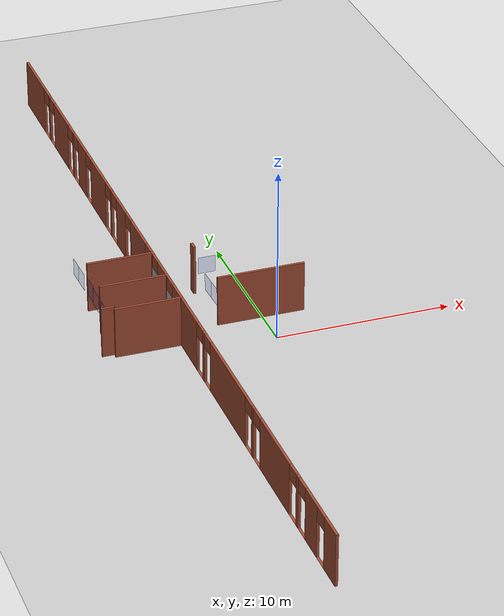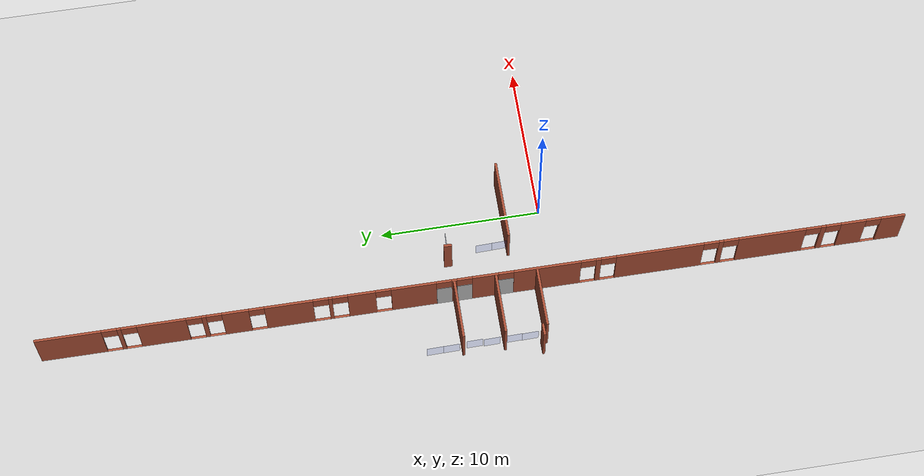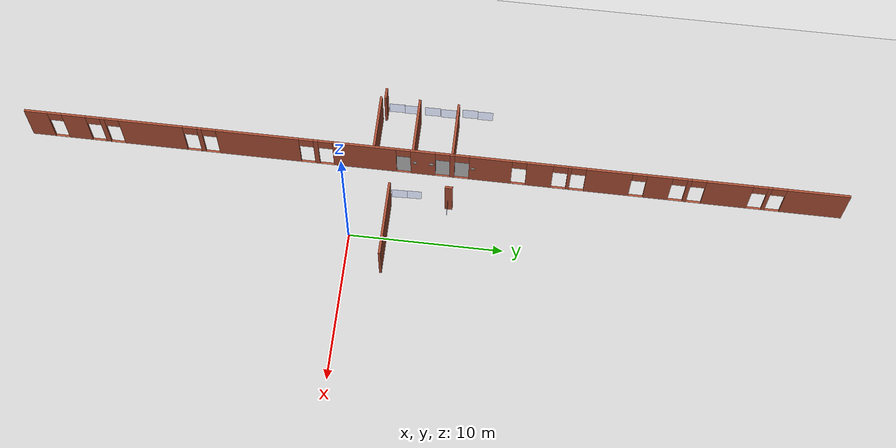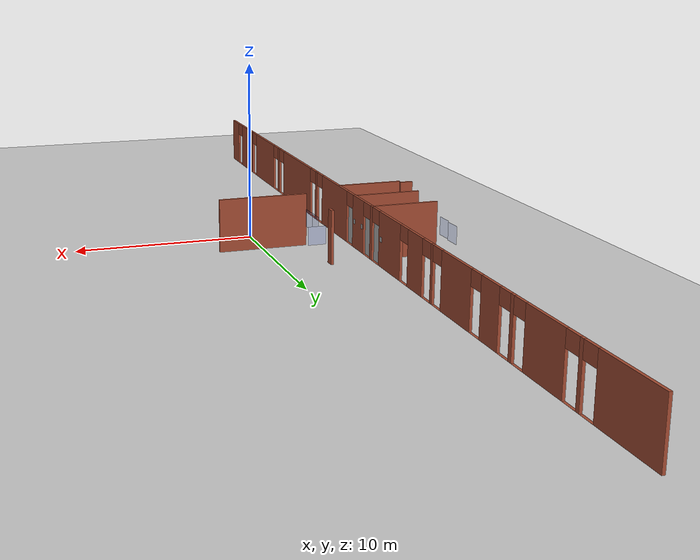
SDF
<sdf version="1.6">
 <world name="default">
  <model name="ground_plane">
   <static>1</static>
   <link name="link">
    <collision name="collision">
     <geometry><plane><normal>0 0 1</normal><size>100 100</size></plane></geometry>
     <surface><friction><ode><mu>100</mu><mu2>50</mu2></ode></friction></surface>
    </collision>
    <visual name="visual">
     <cast_shadows>0</cast_shadows>
     <geometry><plane><normal>0 0 1</normal><size>100 100</size></plane></geometry>
     <material>
      <script><uri>file://media/materials/scripts/gazebo.material</uri><name>Gazebo/Grey</name></script>
     </material>
    </visual>
   </link>
  </model>
  <model name="UNFRGS_INF_-_Predio_73">
   <pose>-0.02513 1.0401 -0.009 0 -0 0</pose>
   <link name="Wall_136">
    <collision name="Wall_136_Collision">
     <geometry><box><size>3.75 0.15 2.96</size></box></geometry>
     <pose>0 0 1.48 0 -0 0</pose>
    </collision>
    <visual name="Wall_136_Visual">
     <pose>0 0 1.48 0 -0 0</pose>
     <geometry><box><size>3.75 0.15 2.96</size></box></geometry>
     <material>
      <script><uri>file://media/materials/scripts/gazebo.material</uri><name>Gazebo/Bricks</name></script>
      <ambient>0.929412 1 0.760784 1</ambient>
     </material>
     <meta><layer>0</layer></meta>
    </visual>
    <pose>-6.88813 5.09778 0 0 -0 0</pose>
   </link>
   <link name="Wall_159">
    <collision name="Wall_159_Collision">
     <geometry><box><size>5 0.15 2.96</size></box></geometry>
     <pose>0 0 1.48 0 -0 0</pose>
    </collision>
    <visual name="Wall_159_Visual">
     <pose>0 0 1.48 0 -0 0</pose>
     <geometry><box><size>5 0.15 2.96</size></box></geometry>
     <material>
      <script><uri>file://media/materials/scripts/gazebo.material</uri><name>Gazebo/Bricks</name></script>
      <ambient>0.929412 1 0.760784 1</ambient>
     </material>
     <meta><layer>0</layer></meta>
    </visual>
    <pose>-0.048133 1.33278 0 0 -0 0</pose>
   </link>
   <link name="Wall_173">
    <collision name="Wall_173_Collision">
     <geometry><box><size>0.5 0.15 2.96</size></box></geometry>
     <pose>0 0 1.48 0 -0 0</pose>
    </collision>
    <visual name="Wall_173_Visual">
     <pose>0 0 1.48 0 -0 0</pose>
     <geometry><box><size>0.5 0.15 2.96</size></box></geometry>
     <material>
      <script><uri>file://media/materials/scripts/gazebo.material</uri><name>Gazebo/Bricks</name></script>
      <ambient>0.929412 1 0.760784 1</ambient>
     </material>
     <meta><layer>0</layer></meta>
    </visual>
    <pose>-2.65213 5.13278 0 0 0 -1.5708</pose>
   </link>
   <link name="Wall_179">
    <collision name="Wall_179_Collision">
     <geometry><box><size>3.75 0.15 2.96</size></box></geometry>
     <pose>0 0 1.48 0 -0 0</pose>
    </collision>
    <visual name="Wall_179_Visual">
     <pose>0 0 1.48 0 -0 0</pose>
     <geometry><box><size>3.75 0.15 2.96</size></box></geometry>
     <material>
      <script><uri>file://media/materials/scripts/gazebo.material</uri><name>Gazebo/Bricks</name></script>
      <ambient>0.929412 1 0.760784 1</ambient>
     </material>
     <meta><layer>0</layer></meta>
    </visual>
    <pose>-6.94213 2.54178 0 0 -0 0</pose>
   </link>
   <link name="Wall_181">
    <collision name="Wall_181_Collision">
     <geometry><box><size>3.75 0.15 2.96</size></box></geometry>
     <pose>0 0 1.48 0 -0 0</pose>
    </collision>
    <visual name="Wall_181_Visual">
     <pose>0 0 1.48 0 -0 0</pose>
     <geometry><box><size>3.75 0.15 2.96</size></box></geometry>
     <material>
      <script><uri>file://media/materials/scripts/gazebo.material</uri><name>Gazebo/Bricks</name></script>
      <ambient>0.929412 1 0.760784 1</ambient>
     </material>
     <meta><layer>0</layer></meta>
    </visual>
    <pose>-6.88713 -0.003219 0 0 -0 0</pose>
   </link>
   <link name="Wall_64">
    <pose>-5.01013 3.78878 0 0 -0 1.5708</pose>
    <visual name="Wall_64_Visual_0">
     <pose>-25.9895 0 1.48 0 -0 0</pose>
     <geometry><box><size>1.52099 0.15 2.96</size></box></geometry>
     <material>
      <script><uri>file://media/materials/scripts/gazebo.material</uri><name>Gazebo/Bricks</name></script>
      <ambient>0.929412 1 0.760784 1</ambient>
     </material>
     <meta><layer>0</layer></meta>
    </visual>
    <collision name="Wall_64_Collision_0">
     <geometry><box><size>1.52099 0.15 2.96</size></box></geometry>
     <pose>-25.9895 0 1.48 0 -0 0</pose>
    </collision>
    <visual name="Wall_64_Visual_1">
     <pose>-23.5034 0 1.48 0 -0 0</pose>
     <geometry><box><size>1.57122 0.15 2.96</size></box></geometry>
     <material>
      <script><uri>file://media/materials/scripts/gazebo.material</uri><name>Gazebo/Bricks</name></script>
      <ambient>0.929412 1 0.760784 1</ambient>
     </material>
     <meta><layer>0</layer></meta>
    </visual>
    <collision name="Wall_64_Collision_1">
     <geometry><box><size>1.57122 0.15 2.96</size></box></geometry>
     <pose>-23.5034 0 1.48 0 -0 0</pose>
    </collision>
    <visual name="Wall_64_Visual_2">
     <pose>-21.62 0 1.48 0 -0 0</pose>
     <geometry><box><size>0.315611 0.15 2.96</size></box></geometry>
     <material>
      <script><uri>file://media/materials/scripts/gazebo.material</uri><name>Gazebo/Bricks</name></script>
      <ambient>0.929412 1 0.760784 1</ambient>
     </material>
     <meta><layer>0</layer></meta>
    </visual>
    <collision name="Wall_64_Collision_2">
     <geometry><box><size>0.315611 0.15 2.96</size></box></geometry>
     <pose>-21.62 0 1.48 0 -0 0</pose>
    </collision>
    <visual name="Wall_64_Visual_3">
     <pose>-18.4152 0 1.48 0 -0 0</pose>
     <geometry><box><size>4.21398 0.15 2.96</size></box></geometry>
     <material>
      <script><uri>file://media/materials/scripts/gazebo.material</uri><name>Gazebo/Bricks</name></script>
      <ambient>0.929412 1 0.760784 1</ambient>
     </material>
     <meta><layer>0</layer></meta>
    </visual>
    <collision name="Wall_64_Collision_3">
     <geometry><box><size>4.21398 0.15 2.96</size></box></geometry>
     <pose>-18.4152 0 1.48 0 -0 0</pose>
    </collision>
    <visual name="Wall_64_Visual_4">
     <pose>-15.2224 0 1.48 0 -0 0</pose>
     <geometry><box><size>0.291694 0.15 2.96</size></box></geometry>
     <material>
      <script><uri>file://media/materials/scripts/gazebo.material</uri><name>Gazebo/Bricks</name></script>
      <ambient>0.929412 1 0.760784 1</ambient>
     </material>
     <meta><layer>0</layer></meta>
    </visual>
    <collision name="Wall_64_Collision_4">
     <geometry><box><size>0.291694 0.15 2.96</size></box></geometry>
     <pose>-15.2224 0 1.48 0 -0 0</pose>
    </collision>
    <visual name="Wall_64_Visual_5">
     <pose>-11.4137 0 1.48 0 -0 0</pose>
     <geometry><box><size>5.44567 0.15 2.96</size></box></geometry>
     <material>
      <script><uri>file://media/materials/scripts/gazebo.material</uri><name>Gazebo/Bricks</name></script>
      <ambient>0.929412 1 0.760784 1</ambient>
     </material>
     <meta><layer>0</layer></meta>
    </visual>
    <collision name="Wall_64_Collision_5">
     <geometry><box><size>5.44567 0.15 2.96</size></box></geometry>
     <pose>-11.4137 0 1.48 0 -0 0</pose>
    </collision>
    <visual name="Wall_64_Visual_6">
     <pose>-7.59901 0 1.48 0 -0 0</pose>
     <geometry><box><size>0.303652 0.15 2.96</size></box></geometry>
     <material>
      <script><uri>file://media/materials/scripts/gazebo.material</uri><name>Gazebo/Bricks</name></script>
      <ambient>0.929412 1 0.760784 1</ambient>
     </material>
     <meta><layer>0</layer></meta>
    </visual>
    <collision name="Wall_64_Collision_6">
     <geometry><box><size>0.303652 0.15 2.96</size></box></geometry>
     <pose>-7.59901 0 1.48 0 -0 0</pose>
    </collision>
    <visual name="Wall_64_Visual_7">
     <pose>-4.43008 0 1.48 0 -0 0</pose>
     <geometry><box><size>4.15419 0.15 2.96</size></box></geometry>
     <material>
      <script><uri>file://media/materials/scripts/gazebo.material</uri><name>Gazebo/Bricks</name></script>
      <ambient>0.929412 1 0.760784 1</ambient>
     </material>
     <meta><layer>0</layer></meta>
    </visual>
    <collision name="Wall_64_Collision_7">
     <geometry><box><size>4.15419 0.15 2.96</size></box></geometry>
     <pose>-4.43008 0 1.48 0 -0 0</pose>
    </collision>
    <visual name="Wall_64_Visual_8">
     <pose>-0.603462 0 1.48 0 -0 0</pose>
     <geometry><box><size>1.61905 0.15 2.96</size></box></geometry>
     <material>
      <script><uri>file://media/materials/scripts/gazebo.material</uri><name>Gazebo/Bricks</name></script>
      <ambient>0.929412 1 0.760784 1</ambient>
     </material>
     <meta><layer>0</layer></meta>
    </visual>
    <collision name="Wall_64_Collision_8">
     <geometry><box><size>1.61905 0.15 2.96</size></box></geometry>
     <pose>-0.603462 0 1.48 0 -0 0</pose>
    </collision>
    <visual name="Wall_64_Visual_9">
     <pose>1.30387 0 1.48 0 -0 0</pose>
     <geometry><box><size>0.31561 0.15 2.96</size></box></geometry>
     <material>
      <script><uri>file://media/materials/scripts/gazebo.material</uri><name>Gazebo/Bricks</name></script>
      <ambient>0.929412 1 0.760784 1</ambient>
     </material>
     <meta><layer>0</layer></meta>
    </visual>
    <collision name="Wall_64_Collision_9">
     <geometry><box><size>0.31561 0.15 2.96</size></box></geometry>
     <pose>1.30387 0 1.48 0 -0 0</pose>
    </collision>
    <visual name="Wall_64_Visual_10">
     <pose>3.79117 0 1.48 0 -0 0</pose>
     <geometry><box><size>2.779 0.15 2.96</size></box></geometry>
     <material>
      <script><uri>file://media/materials/scripts/gazebo.material</uri><name>Gazebo/Bricks</name></script>
      <ambient>0.929412 1 0.760784 1</ambient>
     </material>
     <meta><layer>0</layer></meta>
    </visual>
    <collision name="Wall_64_Collision_10">
     <geometry><box><size>2.779 0.15 2.96</size></box></geometry>
     <pose>3.79117 0 1.48 0 -0 0</pose>
    </collision>
    <visual name="Wall_64_Visual_11">
     <pose>6.97803 0 1.48 0 -0 0</pose>
     <geometry><box><size>1.71472 0.15 2.96</size></box></geometry>
     <material>
      <script><uri>file://media/materials/scripts/gazebo.material</uri><name>Gazebo/Bricks</name></script>
      <ambient>0.929412 1 0.760784 1</ambient>
     </material>
     <meta><layer>0</layer></meta>
    </visual>
    <collision name="Wall_64_Collision_11">
     <geometry><box><size>1.71472 0.15 2.96</size></box></geometry>
     <pose>6.97803 0 1.48 0 -0 0</pose>
    </collision>
    <visual name="Wall_64_Visual_12">
     <pose>8.89134 0 1.48 0 -0 0</pose>
     <geometry><box><size>0.231904 0.15 2.96</size></box></geometry>
     <material>
      <script><uri>file://media/materials/scripts/gazebo.material</uri><name>Gazebo/Bricks</name></script>
      <ambient>0.929412 1 0.760784 1</ambient>
     </material>
     <meta><layer>0</layer></meta>
    </visual>
    <collision name="Wall_64_Collision_12">
     <geometry><box><size>0.231904 0.15 2.96</size></box></geometry>
     <pose>8.89134 0 1.48 0 -0 0</pose>
    </collision>
    <visual name="Wall_64_Visual_13">
     <pose>11.4265 0 1.48 0 -0 0</pose>
     <geometry><box><size>2.95837 0.15 2.96</size></box></geometry>
     <material>
      <script><uri>file://media/materials/scripts/gazebo.material</uri><name>Gazebo/Bricks</name></script>
      <ambient>0.929412 1 0.760784 1</ambient>
     </material>
     <meta><layer>0</layer></meta>
    </visual>
    <collision name="Wall_64_Collision_13">
     <geometry><box><size>2.95837 0.15 2.96</size></box></geometry>
     <pose>11.4265 0 1.48 0 -0 0</pose>
    </collision>
    <visual name="Wall_64_Visual_14">
     <pose>14.6612 0 1.48 0 -0 0</pose>
     <geometry><box><size>1.63101 0.15 2.96</size></box></geometry>
     <material>
      <script><uri>file://media/materials/scripts/gazebo.material</uri><name>Gazebo/Bricks</name></script>
      <ambient>0.929412 1 0.760784 1</ambient>
     </material>
     <meta><layer>0</layer></meta>
    </visual>
    <collision name="Wall_64_Collision_14">
     <geometry><box><size>1.63101 0.15 2.96</size></box></geometry>
     <pose>14.6612 0 1.48 0 -0 0</pose>
    </collision>
    <visual name="Wall_64_Visual_15">
     <pose>16.5506 0 1.48 0 -0 0</pose>
     <geometry><box><size>0.267777 0.15 2.96</size></box></geometry>
     <material>
      <script><uri>file://media/materials/scripts/gazebo.material</uri><name>Gazebo/Bricks</name></script>
      <ambient>0.929412 1 0.760784 1</ambient>
     </material>
     <meta><layer>0</layer></meta>
    </visual>
    <collision name="Wall_64_Collision_15">
     <geometry><box><size>0.267777 0.15 2.96</size></box></geometry>
     <pose>16.5506 0 1.48 0 -0 0</pose>
    </collision>
    <visual name="Wall_64_Visual_16">
     <pose>19.1156 0 1.48 0 -0 0</pose>
     <geometry><box><size>2.98229 0.15 2.96</size></box></geometry>
     <material>
      <script><uri>file://media/materials/scripts/gazebo.material</uri><name>Gazebo/Bricks</name></script>
      <ambient>0.929412 1 0.760784 1</ambient>
     </material>
     <meta><layer>0</layer></meta>
    </visual>
    <collision name="Wall_64_Collision_16">
     <geometry><box><size>2.98229 0.15 2.96</size></box></geometry>
     <pose>19.1156 0 1.48 0 -0 0</pose>
    </collision>
    <visual name="Wall_64_Visual_17">
     <pose>21.6687 0 1.48 0 -0 0</pose>
     <geometry><box><size>0.243863 0.15 2.96</size></box></geometry>
     <material>
      <script><uri>file://media/materials/scripts/gazebo.material</uri><name>Gazebo/Bricks</name></script>
      <ambient>0.929412 1 0.760784 1</ambient>
     </material>
     <meta><layer>0</layer></meta>
    </visual>
    <collision name="Wall_64_Collision_17">
     <geometry><box><size>0.243863 0.15 2.96</size></box></geometry>
     <pose>21.6687 0 1.48 0 -0 0</pose>
    </collision>
    <visual name="Wall_64_Visual_18">
     <pose>24.7403 0 1.48 0 -0 0</pose>
     <geometry><box><size>4.01939 0.15 2.96</size></box></geometry>
     <material>
      <script><uri>file://media/materials/scripts/gazebo.material</uri><name>Gazebo/Bricks</name></script>
      <ambient>0.929412 1 0.760784 1</ambient>
     </material>
     <meta><layer>0</layer></meta>
    </visual>
    <collision name="Wall_64_Collision_18">
     <geometry><box><size>4.01939 0.15 2.96</size></box></geometry>
     <pose>24.7403 0 1.48 0 -0 0</pose>
    </collision>
    <visual name="Wall_64_Visual_19">
     <pose>-24.759 0 0 0 -0 0</pose>
     <geometry><box><size>0.94 0.15 0.001</size></box></geometry>
     <material>
      <script><uri>file://media/materials/scripts/gazebo.material</uri><name>Gazebo/Bricks</name></script>
      <ambient>0.929412 1 0.760784 1</ambient>
     </material>
     <meta><layer>0</layer></meta>
    </visual>
    <collision name="Wall_64_Collision_19">
     <geometry><box><size>0.94 0.15 0.001</size></box></geometry>
     <pose>-24.759 0 0 0 -0 0</pose>
    </collision>
    <visual name="Wall_64_Visual_20">
     <pose>-22.2478 0 0 0 -0 0</pose>
     <geometry><box><size>0.94 0.15 0.001</size></box></geometry>
     <material>
      <script><uri>file://media/materials/scripts/gazebo.material</uri><name>Gazebo/Bricks</name></script>
      <ambient>0.929412 1 0.760784 1</ambient>
     </material>
     <meta><layer>0</layer></meta>
    </visual>
    <collision name="Wall_64_Collision_20">
     <geometry><box><size>0.94 0.15 0.001</size></box></geometry>
     <pose>-22.2478 0 0 0 -0 0</pose>
    </collision>
    <visual name="Wall_64_Visual_21">
     <pose>-20.9922 0 0 0 -0 0</pose>
     <geometry><box><size>0.94 0.15 0.001</size></box></geometry>
     <material>
      <script><uri>file://media/materials/scripts/gazebo.material</uri><name>Gazebo/Bricks</name></script>
      <ambient>0.929412 1 0.760784 1</ambient>
     </material>
     <meta><layer>0</layer></meta>
    </visual>
    <collision name="Wall_64_Collision_21">
     <geometry><box><size>0.94 0.15 0.001</size></box></geometry>
     <pose>-20.9922 0 0 0 -0 0</pose>
    </collision>
    <visual name="Wall_64_Visual_22">
     <pose>-15.8382 0 0 0 -0 0</pose>
     <geometry><box><size>0.94 0.15 0.001</size></box></geometry>
     <material>
      <script><uri>file://media/materials/scripts/gazebo.material</uri><name>Gazebo/Bricks</name></script>
      <ambient>0.929412 1 0.760784 1</ambient>
     </material>
     <meta><layer>0</layer></meta>
    </visual>
    <collision name="Wall_64_Collision_22">
     <geometry><box><size>0.94 0.15 0.001</size></box></geometry>
     <pose>-15.8382 0 0 0 -0 0</pose>
    </collision>
    <visual name="Wall_64_Visual_23">
     <pose>-14.6065 0 0 0 -0 0</pose>
     <geometry><box><size>0.94 0.15 0.001</size></box></geometry>
     <material>
      <script><uri>file://media/materials/scripts/gazebo.material</uri><name>Gazebo/Bricks</name></script>
      <ambient>0.929412 1 0.760784 1</ambient>
     </material>
     <meta><layer>0</layer></meta>
    </visual>
    <collision name="Wall_64_Collision_23">
     <geometry><box><size>0.94 0.15 0.001</size></box></geometry>
     <pose>-14.6065 0 0 0 -0 0</pose>
    </collision>
    <visual name="Wall_64_Visual_24">
     <pose>-8.22083 0 0 0 -0 0</pose>
     <geometry><box><size>0.94 0.15 0.001</size></box></geometry>
     <material>
      <script><uri>file://media/materials/scripts/gazebo.material</uri><name>Gazebo/Bricks</name></script>
      <ambient>0.929412 1 0.760784 1</ambient>
     </material>
     <meta><layer>0</layer></meta>
    </visual>
    <collision name="Wall_64_Collision_24">
     <geometry><box><size>0.94 0.15 0.001</size></box></geometry>
     <pose>-8.22083 0 0 0 -0 0</pose>
    </collision>
    <visual name="Wall_64_Visual_25">
     <pose>-6.97718 0 0 0 -0 0</pose>
     <geometry><box><size>0.94 0.15 0.001</size></box></geometry>
     <material>
      <script><uri>file://media/materials/scripts/gazebo.material</uri><name>Gazebo/Bricks</name></script>
      <ambient>0.929412 1 0.760784 1</ambient>
     </material>
     <meta><layer>0</layer></meta>
    </visual>
    <collision name="Wall_64_Collision_25">
     <geometry><box><size>0.94 0.15 0.001</size></box></geometry>
     <pose>-6.97718 0 0 0 -0 0</pose>
    </collision>
    <visual name="Wall_64_Visual_26">
     <pose>-1.88299 0 0 0 -0 0</pose>
     <geometry><box><size>0.94 0.15 0.001</size></box></geometry>
     <material>
      <script><uri>file://media/materials/scripts/gazebo.material</uri><name>Gazebo/Bricks</name></script>
      <ambient>0.929412 1 0.760784 1</ambient>
     </material>
     <meta><layer>0</layer></meta>
    </visual>
    <collision name="Wall_64_Collision_26">
     <geometry><box><size>0.94 0.15 0.001</size></box></geometry>
     <pose>-1.88299 0 0 0 -0 0</pose>
    </collision>
    <visual name="Wall_64_Visual_27">
     <pose>0.676065 0 0 0 -0 0</pose>
     <geometry><box><size>0.94 0.15 0.001</size></box></geometry>
     <material>
      <script><uri>file://media/materials/scripts/gazebo.material</uri><name>Gazebo/Bricks</name></script>
      <ambient>0.929412 1 0.760784 1</ambient>
     </material>
     <meta><layer>0</layer></meta>
    </visual>
    <collision name="Wall_64_Collision_27">
     <geometry><box><size>0.94 0.15 0.001</size></box></geometry>
     <pose>0.676065 0 0 0 -0 0</pose>
    </collision>
    <visual name="Wall_64_Visual_28">
     <pose>1.93168 0 0 0 -0 0</pose>
     <geometry><box><size>0.94 0.15 0.001</size></box></geometry>
     <material>
      <script><uri>file://media/materials/scripts/gazebo.material</uri><name>Gazebo/Bricks</name></script>
      <ambient>0.929412 1 0.760784 1</ambient>
     </material>
     <meta><layer>0</layer></meta>
    </visual>
    <collision name="Wall_64_Collision_28">
     <geometry><box><size>0.94 0.15 0.001</size></box></geometry>
     <pose>1.93168 0 0 0 -0 0</pose>
    </collision>
    <visual name="Wall_64_Visual_29">
     <pose>5.65067 0 0 0 -0 0</pose>
     <geometry><box><size>0.94 0.15 0.001</size></box></geometry>
     <material>
      <script><uri>file://media/materials/scripts/gazebo.material</uri><name>Gazebo/Bricks</name></script>
      <ambient>0.929412 1 0.760784 1</ambient>
     </material>
     <meta><layer>0</layer></meta>
    </visual>
    <collision name="Wall_64_Collision_29">
     <geometry><box><size>0.94 0.15 0.001</size></box></geometry>
     <pose>5.65067 0 0 0 -0 0</pose>
    </collision>
    <visual name="Wall_64_Visual_30">
     <pose>8.30539 0 0 0 -0 0</pose>
     <geometry><box><size>0.94 0.15 0.001</size></box></geometry>
     <material>
      <script><uri>file://media/materials/scripts/gazebo.material</uri><name>Gazebo/Bricks</name></script>
      <ambient>0.929412 1 0.760784 1</ambient>
     </material>
     <meta><layer>0</layer></meta>
    </visual>
    <collision name="Wall_64_Collision_30">
     <geometry><box><size>0.94 0.15 0.001</size></box></geometry>
     <pose>8.30539 0 0 0 -0 0</pose>
    </collision>
    <visual name="Wall_64_Visual_31">
     <pose>9.4773 0 0 0 -0 0</pose>
     <geometry><box><size>0.94 0.15 0.001</size></box></geometry>
     <material>
      <script><uri>file://media/materials/scripts/gazebo.material</uri><name>Gazebo/Bricks</name></script>
      <ambient>0.929412 1 0.760784 1</ambient>
     </material>
     <meta><layer>0</layer></meta>
    </visual>
    <collision name="Wall_64_Collision_31">
     <geometry><box><size>0.94 0.15 0.001</size></box></geometry>
     <pose>9.4773 0 0 0 -0 0</pose>
    </collision>
    <visual name="Wall_64_Visual_32">
     <pose>13.3757 0 0 0 -0 0</pose>
     <geometry><box><size>0.94 0.15 0.001</size></box></geometry>
     <material>
      <script><uri>file://media/materials/scripts/gazebo.material</uri><name>Gazebo/Bricks</name></script>
      <ambient>0.929412 1 0.760784 1</ambient>
     </material>
     <meta><layer>0</layer></meta>
    </visual>
    <collision name="Wall_64_Collision_32">
     <geometry><box><size>0.94 0.15 0.001</size></box></geometry>
     <pose>13.3757 0 0 0 -0 0</pose>
    </collision>
    <visual name="Wall_64_Visual_33">
     <pose>15.9467 0 0 0 -0 0</pose>
     <geometry><box><size>0.94 0.15 0.001</size></box></geometry>
     <material>
      <script><uri>file://media/materials/scripts/gazebo.material</uri><name>Gazebo/Bricks</name></script>
      <ambient>0.929412 1 0.760784 1</ambient>
     </material>
     <meta><layer>0</layer></meta>
    </visual>
    <collision name="Wall_64_Collision_33">
     <geometry><box><size>0.94 0.15 0.001</size></box></geometry>
     <pose>15.9467 0 0 0 -0 0</pose>
    </collision>
    <visual name="Wall_64_Visual_34">
     <pose>17.1545 0 0 0 -0 0</pose>
     <geometry><box><size>0.94 0.15 0.001</size></box></geometry>
     <material>
      <script><uri>file://media/materials/scripts/gazebo.material</uri><name>Gazebo/Bricks</name></script>
      <ambient>0.929412 1 0.760784 1</ambient>
     </material>
     <meta><layer>0</layer></meta>
    </visual>
    <collision name="Wall_64_Collision_34">
     <geometry><box><size>0.94 0.15 0.001</size></box></geometry>
     <pose>17.1545 0 0 0 -0 0</pose>
    </collision>
    <visual name="Wall_64_Visual_35">
     <pose>21.0767 0 0 0 -0 0</pose>
     <geometry><box><size>0.94 0.15 0.001</size></box></geometry>
     <material>
      <script><uri>file://media/materials/scripts/gazebo.material</uri><name>Gazebo/Bricks</name></script>
      <ambient>0.929412 1 0.760784 1</ambient>
     </material>
     <meta><layer>0</layer></meta>
    </visual>
    <collision name="Wall_64_Collision_35">
     <geometry><box><size>0.94 0.15 0.001</size></box></geometry>
     <pose>21.0767 0 0 0 -0 0</pose>
    </collision>
    <visual name="Wall_64_Visual_36">
     <pose>22.2606 0 0 0 -0 0</pose>
     <geometry><box><size>0.94 0.15 0.001</size></box></geometry>
     <material>
      <script><uri>file://media/materials/scripts/gazebo.material</uri><name>Gazebo/Bricks</name></script>
      <ambient>0.929412 1 0.760784 1</ambient>
     </material>
     <meta><layer>0</layer></meta>
    </visual>
    <collision name="Wall_64_Collision_36">
     <geometry><box><size>0.94 0.15 0.001</size></box></geometry>
     <pose>22.2606 0 0 0 -0 0</pose>
    </collision>
    <visual name="Wall_64_Visual_37">
     <pose>-24.759 0 2.555 0 -0 0</pose>
     <geometry><box><size>0.94 0.15 0.81</size></box></geometry>
     <material>
      <script><uri>file://media/materials/scripts/gazebo.material</uri><name>Gazebo/Bricks</name></script>
      <ambient>0.929412 1 0.760784 1</ambient>
     </material>
     <meta><layer>0</layer></meta>
    </visual>
    <collision name="Wall_64_Collision_37">
     <geometry><box><size>0.94 0.15 0.81</size></box></geometry>
     <pose>-24.759 0 2.555 0 -0 0</pose>
    </collision>
    <visual name="Wall_64_Visual_38">
     <pose>-22.2478 0 2.555 0 -0 0</pose>
     <geometry><box><size>0.94 0.15 0.81</size></box></geometry>
     <material>
      <script><uri>file://media/materials/scripts/gazebo.material</uri><name>Gazebo/Bricks</name></script>
      <ambient>0.929412 1 0.760784 1</ambient>
     </material>
     <meta><layer>0</layer></meta>
    </visual>
    <collision name="Wall_64_Collision_38">
     <geometry><box><size>0.94 0.15 0.81</size></box></geometry>
     <pose>-22.2478 0 2.555 0 -0 0</pose>
    </collision>
    <visual name="Wall_64_Visual_39">
     <pose>-20.9922 0 2.555 0 -0 0</pose>
     <geometry><box><size>0.94 0.15 0.81</size></box></geometry>
     <material>
      <script><uri>file://media/materials/scripts/gazebo.material</uri><name>Gazebo/Bricks</name></script>
      <ambient>0.929412 1 0.760784 1</ambient>
     </material>
     <meta><layer>0</layer></meta>
    </visual>
    <collision name="Wall_64_Collision_39">
     <geometry><box><size>0.94 0.15 0.81</size></box></geometry>
     <pose>-20.9922 0 2.555 0 -0 0</pose>
    </collision>
    <visual name="Wall_64_Visual_40">
     <pose>-15.8382 0 2.555 0 -0 0</pose>
     <geometry><box><size>0.94 0.15 0.81</size></box></geometry>
     <material>
      <script><uri>file://media/materials/scripts/gazebo.material</uri><name>Gazebo/Bricks</name></script>
      <ambient>0.929412 1 0.760784 1</ambient>
     </material>
     <meta><layer>0</layer></meta>
    </visual>
    <collision name="Wall_64_Collision_40">
     <geometry><box><size>0.94 0.15 0.81</size></box></geometry>
     <pose>-15.8382 0 2.555 0 -0 0</pose>
    </collision>
    <visual name="Wall_64_Visual_41">
     <pose>-14.6065 0 2.555 0 -0 0</pose>
     <geometry><box><size>0.94 0.15 0.81</size></box></geometry>
     <material>
      <script><uri>file://media/materials/scripts/gazebo.material</uri><name>Gazebo/Bricks</name></script>
      <ambient>0.929412 1 0.760784 1</ambient>
     </material>
     <meta><layer>0</layer></meta>
    </visual>
    <collision name="Wall_64_Collision_41">
     <geometry><box><size>0.94 0.15 0.81</size></box></geometry>
     <pose>-14.6065 0 2.555 0 -0 0</pose>
    </collision>
    <visual name="Wall_64_Visual_42">
     <pose>-8.22083 0 2.555 0 -0 0</pose>
     <geometry><box><size>0.94 0.15 0.81</size></box></geometry>
     <material>
      <script><uri>file://media/materials/scripts/gazebo.material</uri><name>Gazebo/Bricks</name></script>
      <ambient>0.929412 1 0.760784 1</ambient>
     </material>
     <meta><layer>0</layer></meta>
    </visual>
    <collision name="Wall_64_Collision_42">
     <geometry><box><size>0.94 0.15 0.81</size></box></geometry>
     <pose>-8.22083 0 2.555 0 -0 0</pose>
    </collision>
    <visual name="Wall_64_Visual_43">
     <pose>-6.97718 0 2.555 0 -0 0</pose>
     <geometry><box><size>0.94 0.15 0.81</size></box></geometry>
     <material>
      <script><uri>file://media/materials/scripts/gazebo.material</uri><name>Gazebo/Bricks</name></script>
      <ambient>0.929412 1 0.760784 1</ambient>
     </material>
     <meta><layer>0</layer></meta>
    </visual>
    <collision name="Wall_64_Collision_43">
     <geometry><box><size>0.94 0.15 0.81</size></box></geometry>
     <pose>-6.97718 0 2.555 0 -0 0</pose>
    </collision>
    <visual name="Wall_64_Visual_44">
     <pose>-1.88299 0 2.555 0 -0 0</pose>
     <geometry><box><size>0.94 0.15 0.81</size></box></geometry>
     <material>
      <script><uri>file://media/materials/scripts/gazebo.material</uri><name>Gazebo/Bricks</name></script>
      <ambient>0.929412 1 0.760784 1</ambient>
     </material>
     <meta><layer>0</layer></meta>
    </visual>
    <collision name="Wall_64_Collision_44">
     <geometry><box><size>0.94 0.15 0.81</size></box></geometry>
     <pose>-1.88299 0 2.555 0 -0 0</pose>
    </collision>
    <visual name="Wall_64_Visual_45">
     <pose>0.676065 0 2.555 0 -0 0</pose>
     <geometry><box><size>0.94 0.15 0.81</size></box></geometry>
     <material>
      <script><uri>file://media/materials/scripts/gazebo.material</uri><name>Gazebo/Bricks</name></script>
      <ambient>0.929412 1 0.760784 1</ambient>
     </material>
     <meta><layer>0</layer></meta>
    </visual>
    <collision name="Wall_64_Collision_45">
     <geometry><box><size>0.94 0.15 0.81</size></box></geometry>
     <pose>0.676065 0 2.555 0 -0 0</pose>
    </collision>
    <visual name="Wall_64_Visual_46">
     <pose>1.93168 0 2.555 0 -0 0</pose>
     <geometry><box><size>0.94 0.15 0.81</size></box></geometry>
     <material>
      <script><uri>file://media/materials/scripts/gazebo.material</uri><name>Gazebo/Bricks</name></script>
      <ambient>0.929412 1 0.760784 1</ambient>
     </material>
     <meta><layer>0</layer></meta>
    </visual>
    <collision name="Wall_64_Collision_46">
     <geometry><box><size>0.94 0.15 0.81</size></box></geometry>
     <pose>1.93168 0 2.555 0 -0 0</pose>
    </collision>
    <visual name="Wall_64_Visual_47">
     <pose>5.65067 0 2.555 0 -0 0</pose>
     <geometry><box><size>0.94 0.15 0.81</size></box></geometry>
     <material>
      <script><uri>file://media/materials/scripts/gazebo.material</uri><name>Gazebo/Bricks</name></script>
      <ambient>0.929412 1 0.760784 1</ambient>
     </material>
     <meta><layer>0</layer></meta>
    </visual>
    <collision name="Wall_64_Collision_47">
     <geometry><box><size>0.94 0.15 0.81</size></box></geometry>
     <pose>5.65067 0 2.555 0 -0 0</pose>
    </collision>
    <visual name="Wall_64_Visual_48">
     <pose>8.30539 0 2.555 0 -0 0</pose>
     <geometry><box><size>0.94 0.15 0.81</size></box></geometry>
     <material>
      <script><uri>file://media/materials/scripts/gazebo.material</uri><name>Gazebo/Bricks</name></script>
      <ambient>0.929412 1 0.760784 1</ambient>
     </material>
     <meta><layer>0</layer></meta>
    </visual>
    <collision name="Wall_64_Collision_48">
     <geometry><box><size>0.94 0.15 0.81</size></box></geometry>
     <pose>8.30539 0 2.555 0 -0 0</pose>
    </collision>
    <visual name="Wall_64_Visual_49">
     <pose>9.4773 0 2.555 0 -0 0</pose>
     <geometry><box><size>0.94 0.15 0.81</size></box></geometry>
     <material>
      <script><uri>file://media/materials/scripts/gazebo.material</uri><name>Gazebo/Bricks</name></script>
      <ambient>0.929412 1 0.760784 1</ambient>
     </material>
     <meta><layer>0</layer></meta>
    </visual>
    <collision name="Wall_64_Collision_49">
     <geometry><box><size>0.94 0.15 0.81</size></box></geometry>
     <pose>9.4773 0 2.555 0 -0 0</pose>
    </collision>
    <visual name="Wall_64_Visual_50">
     <pose>13.3757 0 2.555 0 -0 0</pose>
     <geometry><box><size>0.94 0.15 0.81</size></box></geometry>
     <material>
      <script><uri>file://media/materials/scripts/gazebo.material</uri><name>Gazebo/Bricks</name></script>
      <ambient>0.929412 1 0.760784 1</ambient>
     </material>
     <meta><layer>0</layer></meta>
    </visual>
    <collision name="Wall_64_Collision_50">
     <geometry><box><size>0.94 0.15 0.81</size></box></geometry>
     <pose>13.3757 0 2.555 0 -0 0</pose>
    </collision>
    <visual name="Wall_64_Visual_51">
     <pose>15.9467 0 2.555 0 -0 0</pose>
     <geometry><box><size>0.94 0.15 0.81</size></box></geometry>
     <material>
      <script><uri>file://media/materials/scripts/gazebo.material</uri><name>Gazebo/Bricks</name></script>
      <ambient>0.929412 1 0.760784 1</ambient>
     </material>
     <meta><layer>0</layer></meta>
    </visual>
    <collision name="Wall_64_Collision_51">
     <geometry><box><size>0.94 0.15 0.81</size></box></geometry>
     <pose>15.9467 0 2.555 0 -0 0</pose>
    </collision>
    <visual name="Wall_64_Visual_52">
     <pose>17.1545 0 2.555 0 -0 0</pose>
     <geometry><box><size>0.94 0.15 0.81</size></box></geometry>
     <material>
      <script><uri>file://media/materials/scripts/gazebo.material</uri><name>Gazebo/Bricks</name></script>
      <ambient>0.929412 1 0.760784 1</ambient>
     </material>
     <meta><layer>0</layer></meta>
    </visual>
    <collision name="Wall_64_Collision_52">
     <geometry><box><size>0.94 0.15 0.81</size></box></geometry>
     <pose>17.1545 0 2.555 0 -0 0</pose>
    </collision>
    <visual name="Wall_64_Visual_53">
     <pose>21.0767 0 2.555 0 -0 0</pose>
     <geometry><box><size>0.94 0.15 0.81</size></box></geometry>
     <material>
      <script><uri>file://media/materials/scripts/gazebo.material</uri><name>Gazebo/Bricks</name></script>
      <ambient>0.929412 1 0.760784 1</ambient>
     </material>
     <meta><layer>0</layer></meta>
    </visual>
    <collision name="Wall_64_Collision_53">
     <geometry><box><size>0.94 0.15 0.81</size></box></geometry>
     <pose>21.0767 0 2.555 0 -0 0</pose>
    </collision>
    <visual name="Wall_64_Visual_54">
     <pose>22.2606 0 2.555 0 -0 0</pose>
     <geometry><box><size>0.94 0.15 0.81</size></box></geometry>
     <material>
      <script><uri>file://media/materials/scripts/gazebo.material</uri><name>Gazebo/Bricks</name></script>
      <ambient>0.929412 1 0.760784 1</ambient>
     </material>
     <meta><layer>0</layer></meta>
    </visual>
    <collision name="Wall_64_Collision_54">
     <geometry><box><size>0.94 0.15 0.81</size></box></geometry>
     <pose>22.2606 0 2.555 0 -0 0</pose>
    </collision>
   </link>
   <link name="Wall_692">
    <collision name="Wall_692_Collision">
     <geometry><box><size>0.75 0.15 2.96</size></box></geometry>
     <pose>0 0 1.48 0 -0 0</pose>
    </collision>
    <visual name="Wall_692_Visual">
     <pose>0 0 1.48 0 -0 0</pose>
     <geometry><box><size>0.75 0.15 2.96</size></box></geometry>
     <material>
      <script><uri>file://media/materials/scripts/gazebo.material</uri><name>Gazebo/Bricks</name></script>
      <ambient>0.498039 0.498039 0.498039 1</ambient>
     </material>
     <meta><layer>0</layer></meta>
    </visual>
    <pose>-9.04913 0.274781 0 0 -0 3.14159</pose>
   </link>
   <static>1</static>
  </model>
  <model name="placa_226">
   <pose>-4.96 7.5 1.48208 0 -0 1.57</pose>
   <static>1</static>
   <link name="link">
    <collision name="collision"><geometry><box><size>0.268 0.001 0.268</size></box></geometry></collision>
    <visual name="visual">
     <geometry><box><size>0.268 0.001 0.268</size></box></geometry>
     <material>
      <script>
       <uri>model://Placa_226/Materials/Scripts</uri>
       <uri>model://Placa_226/Materials/Textures</uri>
       <name>TexturaPlaca_226/Image</name>
      </script>
     </material>
    </visual>
   </link>
  </model>
  <model name="placa_228">
   <pose>-4.96 4.8 1.48208 0 -0 1.57</pose>
   <static>1</static>
   <link name="link">
    <collision name="collision"><geometry><box><size>0.268 0.001 0.268</size></box></geometry></collision>
    <visual name="visual">
     <geometry><box><size>0.268 0.001 0.268</size></box></geometry>
     <material>
      <script>
       <uri>model://Placa_228/Materials/Scripts</uri>
       <uri>model://Placa_228/Materials/Textures</uri>
       <name>TexturaPlaca_228/Image</name>
      </script>
     </material>
    </visual>
   </link>
  </model>
  <model name="placa_230">
   <pose>-4.96 3.7 1.48208 0 -0 1.57</pose>
   <static>1</static>
   <link name="link">
    <collision name="collision"><geometry><box><size>0.268 0.001 0.268</size></box></geometry></collision>
    <visual name="visual">
     <geometry><box><size>0.268 0.001 0.268</size></box></geometry>
     <material>
      <script>
       <uri>model://Placa_230/Materials/Scripts</uri>
       <uri>model://Placa_230/Materials/Textures</uri>
       <name>TexturaPlaca_230/Image</name>
      </script>
     </material>
    </visual>
   </link>
  </model>
  <model name="PortaInternaDireita_2">
   <pose>-5.1 6.75 1.075 0 -0 1.57</pose>
   <static>1</static>
   <link name="link">
    <collision name="collision"><geometry><box><size>2.15 3.5 0.94</size></box></geometry></collision>
    <visual name="visual">
     <geometry><box><size>0.94 0.035 2.15</size></box></geometry>
     <material>
      <script>
       <uri>model://PortaInternaDireita/materials/scripts</uri>
       <uri>model://PortaInternaDireita/materials/textures</uri>
       <name>TexturaPortaInternaDireita/Image</name>
      </script>
     </material>
    </visual>
   </link>
  </model>
  <model name="PortaInternaEsquerda_4">
   <pose>-5.1 5.5 1.075 0 -0 1.57</pose>
   <static>1</static>
   <link name="link">
    <collision name="collision"><geometry><box><size>2.15 3.5 0.94</size></box></geometry></collision>
    <visual name="visual">
     <geometry><box><size>0.94 0.035 2.15</size></box></geometry>
     <material>
      <script>
       <uri>model://PortaInternaEsquerda/materials/scripts</uri>
       <uri>model://PortaInternaEsquerda/materials/textures</uri>
       <name>TexturaPortaInternaEsquerda/Image</name>
      </script>
     </material>
    </visual>
   </link>
  </model>
  <model name="PortaInternaEsquerda_5">
   <pose>-5.1 2.95 1.075 0 -0 1.57</pose>
   <static>1</static>
   <link name="link">
    <collision name="collision"><geometry><box><size>2.15 3.5 0.94</size></box></geometry></collision>
    <visual name="visual">
     <geometry><box><size>0.94 0.035 2.15</size></box></geometry>
     <material>
      <script>
       <uri>model://PortaInternaEsquerda/materials/scripts</uri>
       <uri>model://PortaInternaEsquerda/materials/textures</uri>
       <name>TexturaPortaInternaEsquerda/Image</name>
      </script>
     </material>
    </visual>
   </link>
  </model>
  <model name="vidro_63">
   <pose>-8.89098 7.89868 0.347325 0 0 -1.55</pose>
   <link name="Wall_2">
    <collision name="Wall_2_Collision">
     <geometry><box><size>1 0.001 1</size></box></geometry>
     <pose>0 0 1.25 0 -0 0</pose>
    </collision>
    <visual name="Wall_2_Visual">
     <pose>0 0 1.25 0 -0 0</pose>
     <transparency>0.8</transparency>
     <geometry><box><size>1 0.001 1</size></box></geometry>
     <material>
      <script><uri>file://media/materials/scripts/gazebo.material</uri><name>Gazebo/BlueTransparent</name></script>
      <ambient>0.1 0.1 0.1 0.1</ambient>
     </material>
     <meta><layer>0</layer></meta>
    </visual>
    <pose>0 0 0 0 -0 3.14159</pose>
   </link>
   <static>1</static>
  </model>
  <model name="vidro_64">
   <pose>-8.89455 6.89447 0.393882 0 0 -1.55</pose>
   <link name="Wall_2">
    <collision name="Wall_2_Collision">
     <geometry><box><size>1 0.001 1</size></box></geometry>
     <pose>0 0 1.25 0 -0 0</pose>
    </collision>
    <visual name="Wall_2_Visual">
     <pose>0 0 1.25 0 -0 0</pose>
     <transparency>0.8</transparency>
     <geometry><box><size>1 0.001 1</size></box></geometry>
     <material>
      <script><uri>file://media/materials/scripts/gazebo.material</uri><name>Gazebo/BlueTransparent</name></script>
      <ambient>0.1 0.1 0.1 0.1</ambient>
     </material>
     <meta><layer>0</layer></meta>
    </visual>
    <pose>0 0 0 0 -0 3.14159</pose>
   </link>
   <static>1</static>
  </model>
  <model name="vidro_65">
   <pose>-8.78607 5.46672 0.352618 0 0 -1.55</pose>
   <link name="Wall_2">
    <collision name="Wall_2_Collision">
     <geometry><box><size>1 0.001 1</size></box></geometry>
     <pose>0 0 1.25 0 -0 0</pose>
    </collision>
    <visual name="Wall_2_Visual">
     <pose>0 0 1.25 0 -0 0</pose>
     <transparency>0.8</transparency>
     <geometry><box><size>1 0.001 1</size></box></geometry>
     <material>
      <script><uri>file://media/materials/scripts/gazebo.material</uri><name>Gazebo/BlueTransparent</name></script>
      <ambient>0.1 0.1 0.1 0.1</ambient>
     </material>
     <meta><layer>0</layer></meta>
    </visual>
    <pose>0 0 0 0 -0 3.14159</pose>
   </link>
   <static>1</static>
  </model>
  <model name="vidro_66">
   <pose>-8.81487 4.4147 0.347971 0 0 -1.55</pose>
   <link name="Wall_2">
    <collision name="Wall_2_Collision">
     <geometry><box><size>1 0.001 1</size></box></geometry>
     <pose>0 0 1.25 0 -0 0</pose>
    </collision>
    <visual name="Wall_2_Visual">
     <pose>0 0 1.25 0 -0 0</pose>
     <transparency>0.8</transparency>
     <geometry><box><size>1 0.001 1</size></box></geometry>
     <material>
      <script><uri>file://media/materials/scripts/gazebo.material</uri><name>Gazebo/BlueTransparent</name></script>
      <ambient>0.1 0.1 0.1 0.1</ambient>
     </material>
     <meta><layer>0</layer></meta>
    </visual>
    <pose>0 0 0 0 -0 3.14159</pose>
   </link>
   <static>1</static>
  </model>
  <model name="vidro_67">
   <pose>-8.80278 3.06399 0.347033 0 0 -1.55</pose>
   <link name="Wall_2">
    <collision name="Wall_2_Collision">
     <geometry><box><size>1 0.001 1</size></box></geometry>
     <pose>0 0 1.25 0 -0 0</pose>
    </collision>
    <visual name="Wall_2_Visual">
     <pose>0 0 1.25 0 -0 0</pose>
     <transparency>0.8</transparency>
     <geometry><box><size>1 0.001 1</size></box></geometry>
     <material>
      <script><uri>file://media/materials/scripts/gazebo.material</uri><name>Gazebo/BlueTransparent</name></script>
      <ambient>0.1 0.1 0.1 0.1</ambient>
     </material>
     <meta><layer>0</layer></meta>
    </visual>
    <pose>0 0 0 0 -0 3.14159</pose>
   </link>
   <static>1</static>
  </model>
  <model name="vidro_68">
   <pose>-8.8072 2.06597 0.363911 0 0 -1.55</pose>
   <link name="Wall_2">
    <collision name="Wall_2_Collision">
     <geometry><box><size>1 0.001 1</size></box></geometry>
     <pose>0 0 1.25 0 -0 0</pose>
    </collision>
    <visual name="Wall_2_Visual">
     <pose>0 0 1.25 0 -0 0</pose>
     <transparency>0.8</transparency>
     <geometry><box><size>1 0.001 1</size></box></geometry>
     <material>
      <script><uri>file://media/materials/scripts/gazebo.material</uri><name>Gazebo/BlueTransparent</name></script>
      <ambient>0.1 0.1 0.1 0.1</ambient>
     </material>
     <meta><layer>0</layer></meta>
    </visual>
    <pose>0 0 0 0 -0 3.14159</pose>
   </link>
   <static>1</static>
  </model>
  <model name="vidro_93">
   <pose>-2.57409 3.92735 0.344795 0 -0 1.6</pose>
   <link name="Wall_2">
    <collision name="Wall_2_Collision">
     <geometry><box><size>1 0.001 1</size></box></geometry>
     <pose>0 0 1.25 0 -0 0</pose>
    </collision>
    <visual name="Wall_2_Visual">
     <pose>0 0 1.25 0 -0 0</pose>
     <transparency>0.8</transparency>
     <geometry><box><size>1 0.001 1</size></box></geometry>
     <material>
      <script><uri>file://media/materials/scripts/gazebo.material</uri><name>Gazebo/BlueTransparent</name></script>
      <ambient>0.1 0.1 0.1 0.1</ambient>
     </material>
     <meta><layer>0</layer></meta>
    </visual>
    <pose>0 0 0 0 -0 3.14159</pose>
   </link>
   <static>1</static>
  </model>
  <model name="vidro_94">
   <pose>-2.54176 2.99631 0.342585 0 -0 1.6</pose>
   <link name="Wall_2">
    <collision name="Wall_2_Collision">
     <geometry><box><size>1 0.001 1</size></box></geometry>
     <pose>0 0 1.25 0 -0 0</pose>
    </collision>
    <visual name="Wall_2_Visual">
     <pose>0 0 1.25 0 -0 0</pose>
     <transparency>0.8</transparency>
     <geometry><box><size>1 0.001 1</size></box></geometry>
     <material>
      <script><uri>file://media/materials/scripts/gazebo.material</uri><name>Gazebo/BlueTransparent</name></script>
      <ambient>0.1 0.1 0.1 0.1</ambient>
     </material>
     <meta><layer>0</layer></meta>
    </visual>
    <pose>0 0 0 0 -0 3.14159</pose>
   </link>
   <static>1</static>
  </model>
  <model name="vidro_104">
   <pose>-1.905 6.15897 0.339751 0 -0 0</pose>
   <link name="Wall_2">
    <collision name="Wall_2_Collision">
     <geometry><box><size>1 0.001 1</size></box></geometry>
     <pose>0 0 1.25 0 -0 0</pose>
    </collision>
    <visual name="Wall_2_Visual">
     <pose>0 0 1.25 0 -0 0</pose>
     <transparency>0.8</transparency>
     <geometry><box><size>1 0.001 1</size></box></geometry>
     <material>
      <script><uri>file://media/materials/scripts/gazebo.material</uri><name>Gazebo/BlueTransparent</name></script>
      <ambient>0.1 0.1 0.1 0.1</ambient>
     </material>
     <meta><layer>0</layer></meta>
    </visual>
    <pose>0 0 0 0 -0 3.14159</pose>
   </link>
   <static>1</static>
  </model>
 </world>
</sdf>
